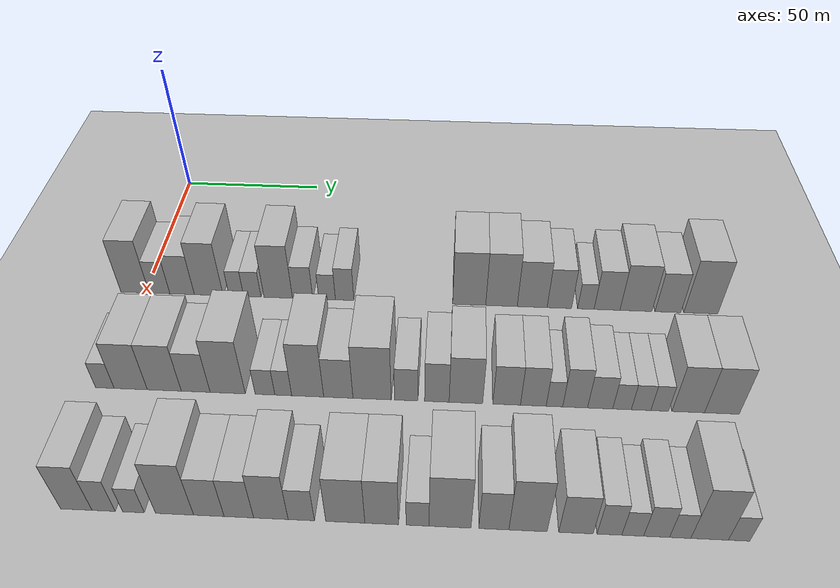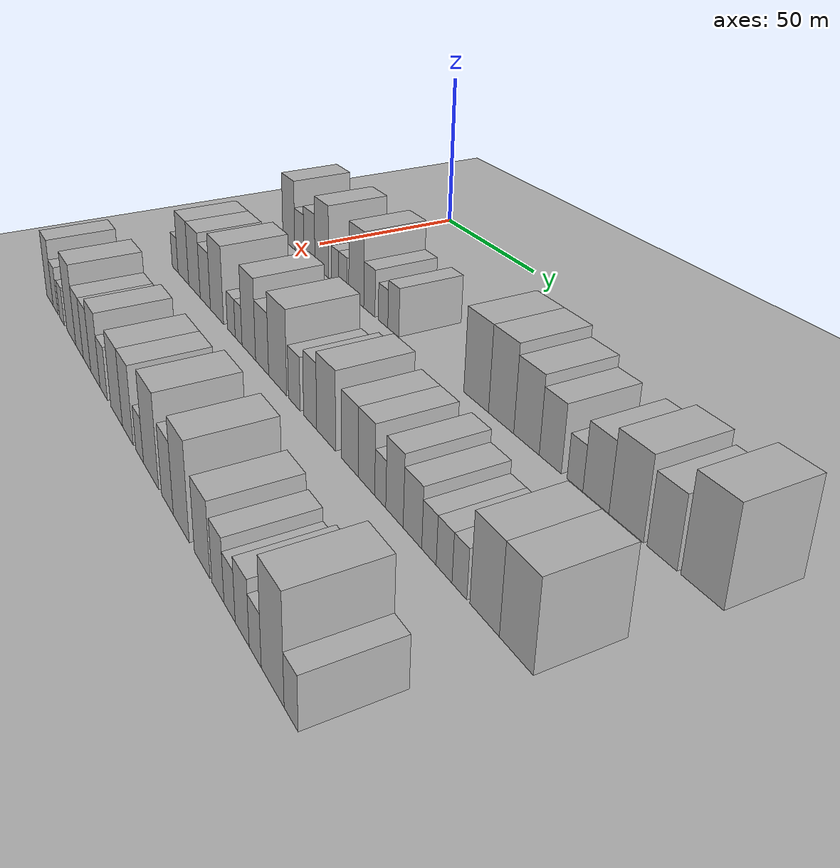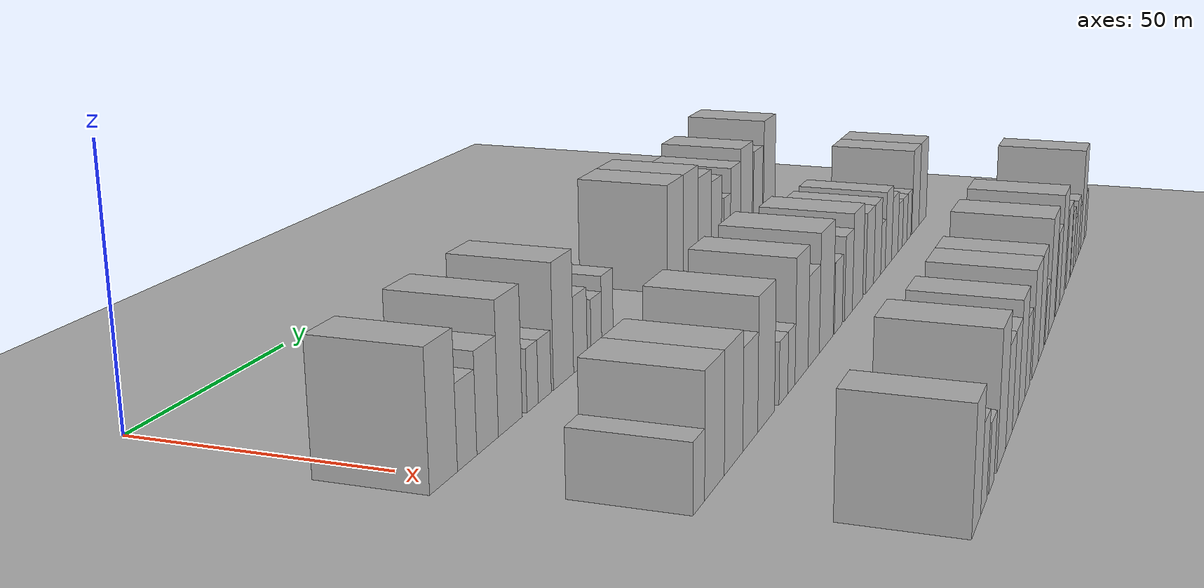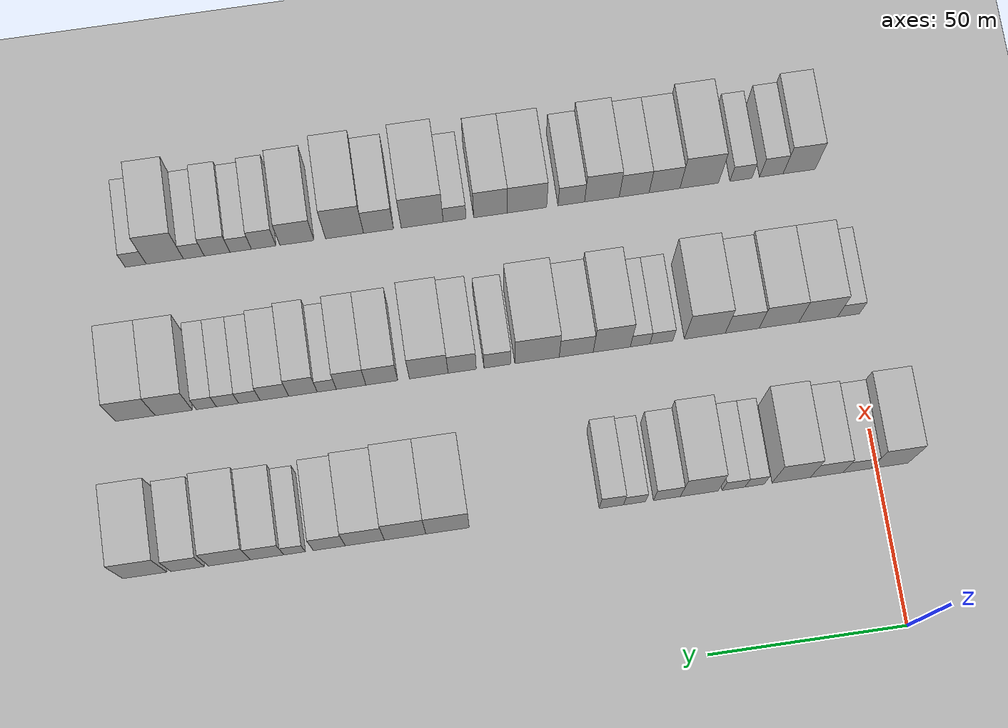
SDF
<sdf version="1.6">
 <world name="default">
  <include><name>ground_plane_1</name><uri>model://HANNAS_ground_plane</uri></include>
  <include>
   <name>ground_plane_2</name>
   <uri>model://HANNAS_ground_plane</uri>
   <pose>100 0 0  0 0 0</pose>
  </include>
  <model name="building_43">
   <static>1</static>
   <pose>50.0000 -3.1910 0 0.000000 0.000000 0.000000</pose>
   <link name="link">
    <pose>0 0 12.00 0 0 0</pose>
    <collision name="collision"><geometry><box><size>20.0000 9.6660 24.0000</size></box></geometry></collision>
    <visual name="visual">
     <cast_shadows>0</cast_shadows>
     <geometry><box><size>20.0000 9.6660 24.0000</size></box></geometry>
     <material>
      <script>
       <uri>model://HANNAS_wall/materials/scripts</uri>
       <uri>model://HANNAS_wall/materials/textures</uri>
       <name>vrc/HANNAS_wall</name>
      </script>
     </material>
    </visual>
   </link>
  </model>
  <model name="building_44">
   <static>1</static>
   <pose>50.0000 5.1931 0 0.000000 0.000000 0.000000</pose>
   <link name="link">
    <pose>0 0 7.50 0 0 0</pose>
    <collision name="collision"><geometry><box><size>20.0000 7.1022 15.0000</size></box></geometry></collision>
    <visual name="visual">
     <cast_shadows>0</cast_shadows>
     <geometry><box><size>20.0000 7.1022 15.0000</size></box></geometry>
     <material>
      <script>
       <uri>model://HANNAS_wall/materials/scripts</uri>
       <uri>model://HANNAS_wall/materials/textures</uri>
       <name>vrc/HANNAS_wall</name>
      </script>
     </material>
    </visual>
   </link>
  </model>
  <model name="building_45">
   <static>1</static>
   <pose>50.0000 12.9163 0 0.000000 0.000000 0.000000</pose>
   <link name="link">
    <pose>0 0 9.00 0 0 0</pose>
    <collision name="collision"><geometry><box><size>20.0000 8.3441 18.0000</size></box></geometry></collision>
    <visual name="visual">
     <cast_shadows>0</cast_shadows>
     <geometry><box><size>20.0000 8.3441 18.0000</size></box></geometry>
     <material>
      <script>
       <uri>model://HANNAS_wall/materials/scripts</uri>
       <uri>model://HANNAS_wall/materials/textures</uri>
       <name>vrc/HANNAS_wall</name>
      </script>
     </material>
    </visual>
   </link>
  </model>
  <model name="building_46">
   <static>1</static>
   <pose>50.0000 21.9917 0 0.000000 0.000000 0.000000</pose>
   <link name="link">
    <pose>0 0 12.00 0 0 0</pose>
    <collision name="collision"><geometry><box><size>20.0000 9.8067 24.0000</size></box></geometry></collision>
    <visual name="visual">
     <cast_shadows>0</cast_shadows>
     <geometry><box><size>20.0000 9.8067 24.0000</size></box></geometry>
     <material>
      <script>
       <uri>model://HANNAS_wall/materials/scripts</uri>
       <uri>model://HANNAS_wall/materials/textures</uri>
       <name>vrc/HANNAS_wall</name>
      </script>
     </material>
    </visual>
   </link>
  </model>
  <model name="building_47">
   <static>1</static>
   <pose>50.0000 31.3637 0 0.000000 0.000000 0.000000</pose>
   <link name="link">
    <pose>0 0 6.00 0 0 0</pose>
    <collision name="collision"><geometry><box><size>20.0000 4.9374 12.0000</size></box></geometry></collision>
    <visual name="visual">
     <cast_shadows>0</cast_shadows>
     <geometry><box><size>20.0000 4.9374 12.0000</size></box></geometry>
     <material>
      <script>
       <uri>model://HANNAS_wall/materials/scripts</uri>
       <uri>model://HANNAS_wall/materials/textures</uri>
       <name>vrc/HANNAS_wall</name>
      </script>
     </material>
    </visual>
   </link>
  </model>
  <model name="building_48">
   <static>1</static>
   <pose>50.0000 36.7672 0 0.000000 0.000000 0.000000</pose>
   <link name="link">
    <pose>0 0 6.00 0 0 0</pose>
    <collision name="collision"><geometry><box><size>20.0000 5.8695 12.0000</size></box></geometry></collision>
    <visual name="visual">
     <cast_shadows>0</cast_shadows>
     <geometry><box><size>20.0000 5.8695 12.0000</size></box></geometry>
     <material>
      <script>
       <uri>model://HANNAS_wall/materials/scripts</uri>
       <uri>model://HANNAS_wall/materials/textures</uri>
       <name>vrc/HANNAS_wall</name>
      </script>
     </material>
    </visual>
   </link>
  </model>
  <model name="building_49">
   <static>1</static>
   <pose>50.0000 45.5210 0 0.000000 0.000000 0.000000</pose>
   <link name="link">
    <pose>0 0 12.00 0 0 0</pose>
    <collision name="collision"><geometry><box><size>20.0000 9.6381 24.0000</size></box></geometry></collision>
    <visual name="visual">
     <cast_shadows>0</cast_shadows>
     <geometry><box><size>20.0000 9.6381 24.0000</size></box></geometry>
     <material>
      <script>
       <uri>model://HANNAS_wall/materials/scripts</uri>
       <uri>model://HANNAS_wall/materials/textures</uri>
       <name>vrc/HANNAS_wall</name>
      </script>
     </material>
    </visual>
   </link>
  </model>
  <model name="building_50">
   <static>1</static>
   <pose>50.0000 53.7683 0 0.000000 0.000000 0.000000</pose>
   <link name="link">
    <pose>0 0 7.50 0 0 0</pose>
    <collision name="collision"><geometry><box><size>20.0000 6.8565 15.0000</size></box></geometry></collision>
    <visual name="visual">
     <cast_shadows>0</cast_shadows>
     <geometry><box><size>20.0000 6.8565 15.0000</size></box></geometry>
     <material>
      <script>
       <uri>model://HANNAS_wall/materials/scripts</uri>
       <uri>model://HANNAS_wall/materials/textures</uri>
       <name>vrc/HANNAS_wall</name>
      </script>
     </material>
    </visual>
   </link>
  </model>
  <model name="building_51">
   <static>1</static>
   <pose>50.0000 61.9982 0 0.000000 0.000000 0.000000</pose>
   <link name="link">
    <pose>0 0 6.00 0 0 0</pose>
    <collision name="collision"><geometry><box><size>20.0000 5.6034 12.0000</size></box></geometry></collision>
    <visual name="visual">
     <cast_shadows>0</cast_shadows>
     <geometry><box><size>20.0000 5.6034 12.0000</size></box></geometry>
     <material>
      <script>
       <uri>model://HANNAS_wall/materials/scripts</uri>
       <uri>model://HANNAS_wall/materials/textures</uri>
       <name>vrc/HANNAS_wall</name>
      </script>
     </material>
    </visual>
   </link>
  </model>
  <model name="building_52">
   <static>1</static>
   <pose>50.0000 67.8972 0 0.000000 0.000000 0.000000</pose>
   <link name="link">
    <pose>0 0 7.50 0 0 0</pose>
    <collision name="collision"><geometry><box><size>20.0000 6.1945 15.0000</size></box></geometry></collision>
    <visual name="visual">
     <cast_shadows>0</cast_shadows>
     <geometry><box><size>20.0000 6.1945 15.0000</size></box></geometry>
     <material>
      <script>
       <uri>model://HANNAS_wall/materials/scripts</uri>
       <uri>model://HANNAS_wall/materials/textures</uri>
       <name>vrc/HANNAS_wall</name>
      </script>
     </material>
    </visual>
   </link>
  </model>
  <model name="building_53">
   <static>1</static>
   <pose>50.0000 109.4532 0 0.000000 0.000000 0.000000</pose>
   <link name="link">
    <pose>0 0 12.00 0 0 0</pose>
    <collision name="collision"><geometry><box><size>20.0000 10.9725 24.0000</size></box></geometry></collision>
    <visual name="visual">
     <cast_shadows>0</cast_shadows>
     <geometry><box><size>20.0000 10.9725 24.0000</size></box></geometry>
     <material>
      <script>
       <uri>model://HANNAS_wall/materials/scripts</uri>
       <uri>model://HANNAS_wall/materials/textures</uri>
       <name>vrc/HANNAS_wall</name>
      </script>
     </material>
    </visual>
   </link>
  </model>
  <model name="building_54">
   <static>1</static>
   <pose>50.0000 120.1569 0 0.000000 0.000000 0.000000</pose>
   <link name="link">
    <pose>0 0 12.00 0 0 0</pose>
    <collision name="collision"><geometry><box><size>20.0000 10.4349 24.0000</size></box></geometry></collision>
    <visual name="visual">
     <cast_shadows>0</cast_shadows>
     <geometry><box><size>20.0000 10.4349 24.0000</size></box></geometry>
     <material>
      <script>
       <uri>model://HANNAS_wall/materials/scripts</uri>
       <uri>model://HANNAS_wall/materials/textures</uri>
       <name>vrc/HANNAS_wall</name>
      </script>
     </material>
    </visual>
   </link>
  </model>
  <model name="building_55">
   <static>1</static>
   <pose>50.0000 130.3125 0 0.000000 0.000000 0.000000</pose>
   <link name="link">
    <pose>0 0 10.50 0 0 0</pose>
    <collision name="collision"><geometry><box><size>20.0000 9.8762 21.0000</size></box></geometry></collision>
    <visual name="visual">
     <cast_shadows>0</cast_shadows>
     <geometry><box><size>20.0000 9.8762 21.0000</size></box></geometry>
     <material>
      <script>
       <uri>model://HANNAS_wall/materials/scripts</uri>
       <uri>model://HANNAS_wall/materials/textures</uri>
       <name>vrc/HANNAS_wall</name>
      </script>
     </material>
    </visual>
   </link>
  </model>
  <model name="building_56">
   <static>1</static>
   <pose>50.0000 139.2779 0 0.000000 0.000000 0.000000</pose>
   <link name="link">
    <pose>0 0 9.00 0 0 0</pose>
    <collision name="collision"><geometry><box><size>20.0000 8.0546 18.0000</size></box></geometry></collision>
    <visual name="visual">
     <cast_shadows>0</cast_shadows>
     <geometry><box><size>20.0000 8.0546 18.0000</size></box></geometry>
     <material>
      <script>
       <uri>model://HANNAS_wall/materials/scripts</uri>
       <uri>model://HANNAS_wall/materials/textures</uri>
       <name>vrc/HANNAS_wall</name>
      </script>
     </material>
    </visual>
   </link>
  </model>
  <model name="building_57">
   <static>1</static>
   <pose>50.0000 148.0063 0 0.000000 0.000000 0.000000</pose>
   <link name="link">
    <pose>0 0 6.00 0 0 0</pose>
    <collision name="collision"><geometry><box><size>20.0000 5.4024 12.0000</size></box></geometry></collision>
    <visual name="visual">
     <cast_shadows>0</cast_shadows>
     <geometry><box><size>20.0000 5.4024 12.0000</size></box></geometry>
     <material>
      <script>
       <uri>model://HANNAS_wall/materials/scripts</uri>
       <uri>model://HANNAS_wall/materials/textures</uri>
       <name>vrc/HANNAS_wall</name>
      </script>
     </material>
    </visual>
   </link>
  </model>
  <model name="building_58">
   <static>1</static>
   <pose>50.0000 154.9467 0 0.000000 0.000000 0.000000</pose>
   <link name="link">
    <pose>0 0 9.00 0 0 0</pose>
    <collision name="collision"><geometry><box><size>20.0000 8.4783 18.0000</size></box></geometry></collision>
    <visual name="visual">
     <cast_shadows>0</cast_shadows>
     <geometry><box><size>20.0000 8.4783 18.0000</size></box></geometry>
     <material>
      <script>
       <uri>model://HANNAS_wall/materials/scripts</uri>
       <uri>model://HANNAS_wall/materials/textures</uri>
       <name>vrc/HANNAS_wall</name>
      </script>
     </material>
    </visual>
   </link>
  </model>
  <model name="building_59">
   <static>1</static>
   <pose>50.0000 164.4243 0 0.000000 0.000000 0.000000</pose>
   <link name="link">
    <pose>0 0 10.50 0 0 0</pose>
    <collision name="collision"><geometry><box><size>20.0000 10.4770 21.0000</size></box></geometry></collision>
    <visual name="visual">
     <cast_shadows>0</cast_shadows>
     <geometry><box><size>20.0000 10.4770 21.0000</size></box></geometry>
     <material>
      <script>
       <uri>model://HANNAS_wall/materials/scripts</uri>
       <uri>model://HANNAS_wall/materials/textures</uri>
       <name>vrc/HANNAS_wall</name>
      </script>
     </material>
    </visual>
   </link>
  </model>
  <model name="building_60">
   <static>1</static>
   <pose>50.0000 174.8707 0 0.000000 0.000000 0.000000</pose>
   <link name="link">
    <pose>0 0 9.00 0 0 0</pose>
    <collision name="collision"><geometry><box><size>20.0000 8.4156 18.0000</size></box></geometry></collision>
    <visual name="visual">
     <cast_shadows>0</cast_shadows>
     <geometry><box><size>20.0000 8.4156 18.0000</size></box></geometry>
     <material>
      <script>
       <uri>model://HANNAS_wall/materials/scripts</uri>
       <uri>model://HANNAS_wall/materials/textures</uri>
       <name>vrc/HANNAS_wall</name>
      </script>
     </material>
    </visual>
   </link>
  </model>
  <model name="building_61">
   <static>1</static>
   <pose>50.0000 185.6083 0 0.000000 0.000000 0.000000</pose>
   <link name="link">
    <pose>0 0 12.00 0 0 0</pose>
    <collision name="collision"><geometry><box><size>20.0000 11.0596 24.0000</size></box></geometry></collision>
    <visual name="visual">
     <cast_shadows>0</cast_shadows>
     <geometry><box><size>20.0000 11.0596 24.0000</size></box></geometry>
     <material>
      <script>
       <uri>model://HANNAS_wall/materials/scripts</uri>
       <uri>model://HANNAS_wall/materials/textures</uri>
       <name>vrc/HANNAS_wall</name>
      </script>
     </material>
    </visual>
   </link>
  </model>
  <model name="building_127">
   <static>1</static>
   <pose>90.0000 -0.2088 0 0.000000 0.000000 0.000000</pose>
   <link name="link">
    <pose>0 0 6.00 0 0 0</pose>
    <collision name="collision"><geometry><box><size>20.0000 5.7023 12.0000</size></box></geometry></collision>
    <visual name="visual">
     <cast_shadows>0</cast_shadows>
     <geometry><box><size>20.0000 5.7023 12.0000</size></box></geometry>
     <material>
      <script>
       <uri>model://HANNAS_wall/materials/scripts</uri>
       <uri>model://HANNAS_wall/materials/textures</uri>
       <name>vrc/HANNAS_wall</name>
      </script>
     </material>
    </visual>
   </link>
  </model>
  <model name="building_128">
   <static>1</static>
   <pose>90.0000 7.7156 0 0.000000 0.000000 0.000000</pose>
   <link name="link">
    <pose>0 0 10.50 0 0 0</pose>
    <collision name="collision"><geometry><box><size>20.0000 10.1465 21.0000</size></box></geometry></collision>
    <visual name="visual">
     <cast_shadows>0</cast_shadows>
     <geometry><box><size>20.0000 10.1465 21.0000</size></box></geometry>
     <material>
      <script>
       <uri>model://HANNAS_wall/materials/scripts</uri>
       <uri>model://HANNAS_wall/materials/textures</uri>
       <name>vrc/HANNAS_wall</name>
      </script>
     </material>
    </visual>
   </link>
  </model>
  <model name="building_129">
   <static>1</static>
   <pose>90.0000 17.9669 0 0.000000 0.000000 0.000000</pose>
   <link name="link">
    <pose>0 0 10.50 0 0 0</pose>
    <collision name="collision"><geometry><box><size>20.0000 10.3562 21.0000</size></box></geometry></collision>
    <visual name="visual">
     <cast_shadows>0</cast_shadows>
     <geometry><box><size>20.0000 10.3562 21.0000</size></box></geometry>
     <material>
      <script>
       <uri>model://HANNAS_wall/materials/scripts</uri>
       <uri>model://HANNAS_wall/materials/textures</uri>
       <name>vrc/HANNAS_wall</name>
      </script>
     </material>
    </visual>
   </link>
  </model>
  <model name="building_130">
   <static>1</static>
   <pose>90.0000 27.5365 0 0.000000 0.000000 0.000000</pose>
   <link name="link">
    <pose>0 0 9.00 0 0 0</pose>
    <collision name="collision"><geometry><box><size>20.0000 8.7829 18.0000</size></box></geometry></collision>
    <visual name="visual">
     <cast_shadows>0</cast_shadows>
     <geometry><box><size>20.0000 8.7829 18.0000</size></box></geometry>
     <material>
      <script>
       <uri>model://HANNAS_wall/materials/scripts</uri>
       <uri>model://HANNAS_wall/materials/textures</uri>
       <name>vrc/HANNAS_wall</name>
      </script>
     </material>
    </visual>
   </link>
  </model>
  <model name="building_131">
   <static>1</static>
   <pose>90.0000 37.2476 0 0.000000 0.000000 0.000000</pose>
   <link name="link">
    <pose>0 0 12.00 0 0 0</pose>
    <collision name="collision"><geometry><box><size>20.0000 10.6394 24.0000</size></box></geometry></collision>
    <visual name="visual">
     <cast_shadows>0</cast_shadows>
     <geometry><box><size>20.0000 10.6394 24.0000</size></box></geometry>
     <material>
      <script>
       <uri>model://HANNAS_wall/materials/scripts</uri>
       <uri>model://HANNAS_wall/materials/textures</uri>
       <name>vrc/HANNAS_wall</name>
      </script>
     </material>
    </visual>
   </link>
  </model>
  <model name="building_132">
   <static>1</static>
   <pose>90.0000 48.5385 0 0.000000 0.000000 0.000000</pose>
   <link name="link">
    <pose>0 0 6.00 0 0 0</pose>
    <collision name="collision"><geometry><box><size>20.0000 5.9423 12.0000</size></box></geometry></collision>
    <visual name="visual">
     <cast_shadows>0</cast_shadows>
     <geometry><box><size>20.0000 5.9423 12.0000</size></box></geometry>
     <material>
      <script>
       <uri>model://HANNAS_wall/materials/scripts</uri>
       <uri>model://HANNAS_wall/materials/textures</uri>
       <name>vrc/HANNAS_wall</name>
      </script>
     </material>
    </visual>
   </link>
  </model>
  <model name="building_133">
   <static>1</static>
   <pose>90.0000 54.0481 0 0.000000 0.000000 0.000000</pose>
   <link name="link">
    <pose>0 0 6.00 0 0 0</pose>
    <collision name="collision"><geometry><box><size>20.0000 5.0769 12.0000</size></box></geometry></collision>
    <visual name="visual">
     <cast_shadows>0</cast_shadows>
     <geometry><box><size>20.0000 5.0769 12.0000</size></box></geometry>
     <material>
      <script>
       <uri>model://HANNAS_wall/materials/scripts</uri>
       <uri>model://HANNAS_wall/materials/textures</uri>
       <name>vrc/HANNAS_wall</name>
      </script>
     </material>
    </visual>
   </link>
  </model>
  <model name="building_134">
   <static>1</static>
   <pose>90.0000 61.3993 0 0.000000 0.000000 0.000000</pose>
   <link name="link">
    <pose>0 0 12.00 0 0 0</pose>
    <collision name="collision"><geometry><box><size>20.0000 9.6254 24.0000</size></box></geometry></collision>
    <visual name="visual">
     <cast_shadows>0</cast_shadows>
     <geometry><box><size>20.0000 9.6254 24.0000</size></box></geometry>
     <material>
      <script>
       <uri>model://HANNAS_wall/materials/scripts</uri>
       <uri>model://HANNAS_wall/materials/textures</uri>
       <name>vrc/HANNAS_wall</name>
      </script>
     </material>
    </visual>
   </link>
  </model>
  <model name="building_135">
   <static>1</static>
   <pose>90.0000 70.6013 0 0.000000 0.000000 0.000000</pose>
   <link name="link">
    <pose>0 0 9.00 0 0 0</pose>
    <collision name="collision"><geometry><box><size>20.0000 8.7785 18.0000</size></box></geometry></collision>
    <visual name="visual">
     <cast_shadows>0</cast_shadows>
     <geometry><box><size>20.0000 8.7785 18.0000</size></box></geometry>
     <material>
      <script>
       <uri>model://HANNAS_wall/materials/scripts</uri>
       <uri>model://HANNAS_wall/materials/textures</uri>
       <name>vrc/HANNAS_wall</name>
      </script>
     </material>
    </visual>
   </link>
  </model>
  <model name="building_136">
   <static>1</static>
   <pose>90.0000 80.7221 0 0.000000 0.000000 0.000000</pose>
   <link name="link">
    <pose>0 0 12.00 0 0 0</pose>
    <collision name="collision"><geometry><box><size>20.0000 11.4631 24.0000</size></box></geometry></collision>
    <visual name="visual">
     <cast_shadows>0</cast_shadows>
     <geometry><box><size>20.0000 11.4631 24.0000</size></box></geometry>
     <material>
      <script>
       <uri>model://HANNAS_wall/materials/scripts</uri>
       <uri>model://HANNAS_wall/materials/textures</uri>
       <name>vrc/HANNAS_wall</name>
      </script>
     </material>
    </visual>
   </link>
  </model>
  <model name="building_137">
   <static>1</static>
   <pose>90.0000 90.9222 0 0.000000 0.000000 0.000000</pose>
   <link name="link">
    <pose>0 0 7.50 0 0 0</pose>
    <collision name="collision"><geometry><box><size>20.0000 6.9370 15.0000</size></box></geometry></collision>
    <visual name="visual">
     <cast_shadows>0</cast_shadows>
     <geometry><box><size>20.0000 6.9370 15.0000</size></box></geometry>
     <material>
      <script>
       <uri>model://HANNAS_wall/materials/scripts</uri>
       <uri>model://HANNAS_wall/materials/textures</uri>
       <name>vrc/HANNAS_wall</name>
      </script>
     </material>
    </visual>
   </link>
  </model>
  <model name="building_138">
   <static>1</static>
   <pose>90.0000 100.0258 0 0.000000 0.000000 0.000000</pose>
   <link name="link">
    <pose>0 0 9.00 0 0 0</pose>
    <collision name="collision"><geometry><box><size>20.0000 7.2702 18.0000</size></box></geometry></collision>
    <visual name="visual">
     <cast_shadows>0</cast_shadows>
     <geometry><box><size>20.0000 7.2702 18.0000</size></box></geometry>
     <material>
      <script>
       <uri>model://HANNAS_wall/materials/scripts</uri>
       <uri>model://HANNAS_wall/materials/textures</uri>
       <name>vrc/HANNAS_wall</name>
      </script>
     </material>
    </visual>
   </link>
  </model>
  <model name="building_139">
   <static>1</static>
   <pose>90.0000 108.6352 0 0.000000 0.000000 0.000000</pose>
   <link name="link">
    <pose>0 0 10.50 0 0 0</pose>
    <collision name="collision"><geometry><box><size>20.0000 9.9487 21.0000</size></box></geometry></collision>
    <visual name="visual">
     <cast_shadows>0</cast_shadows>
     <geometry><box><size>20.0000 9.9487 21.0000</size></box></geometry>
     <material>
      <script>
       <uri>model://HANNAS_wall/materials/scripts</uri>
       <uri>model://HANNAS_wall/materials/textures</uri>
       <name>vrc/HANNAS_wall</name>
      </script>
     </material>
    </visual>
   </link>
  </model>
  <model name="building_140">
   <static>1</static>
   <pose>90.0000 120.7035 0 0.000000 0.000000 0.000000</pose>
   <link name="link">
    <pose>0 0 9.00 0 0 0</pose>
    <collision name="collision"><geometry><box><size>20.0000 8.1879 18.0000</size></box></geometry></collision>
    <visual name="visual">
     <cast_shadows>0</cast_shadows>
     <geometry><box><size>20.0000 8.1879 18.0000</size></box></geometry>
     <material>
      <script>
       <uri>model://HANNAS_wall/materials/scripts</uri>
       <uri>model://HANNAS_wall/materials/textures</uri>
       <name>vrc/HANNAS_wall</name>
      </script>
     </material>
    </visual>
   </link>
  </model>
  <model name="building_141">
   <static>1</static>
   <pose>90.0000 128.5913 0 0.000000 0.000000 0.000000</pose>
   <link name="link">
    <pose>0 0 9.00 0 0 0</pose>
    <collision name="collision"><geometry><box><size>20.0000 7.5877 18.0000</size></box></geometry></collision>
    <visual name="visual">
     <cast_shadows>0</cast_shadows>
     <geometry><box><size>20.0000 7.5877 18.0000</size></box></geometry>
     <material>
      <script>
       <uri>model://HANNAS_wall/materials/scripts</uri>
       <uri>model://HANNAS_wall/materials/textures</uri>
       <name>vrc/HANNAS_wall</name>
      </script>
     </material>
    </visual>
   </link>
  </model>
  <model name="building_142">
   <static>1</static>
   <pose>90.0000 134.8174 0 0.000000 0.000000 0.000000</pose>
   <link name="link">
    <pose>0 0 6.00 0 0 0</pose>
    <collision name="collision"><geometry><box><size>20.0000 4.8645 12.0000</size></box></geometry></collision>
    <visual name="visual">
     <cast_shadows>0</cast_shadows>
     <geometry><box><size>20.0000 4.8645 12.0000</size></box></geometry>
     <material>
      <script>
       <uri>model://HANNAS_wall/materials/scripts</uri>
       <uri>model://HANNAS_wall/materials/textures</uri>
       <name>vrc/HANNAS_wall</name>
      </script>
     </material>
    </visual>
   </link>
  </model>
  <model name="building_143">
   <static>1</static>
   <pose>90.0000 140.9001 0 0.000000 0.000000 0.000000</pose>
   <link name="link">
    <pose>0 0 9.00 0 0 0</pose>
    <collision name="collision"><geometry><box><size>20.0000 7.3009 18.0000</size></box></geometry></collision>
    <visual name="visual">
     <cast_shadows>0</cast_shadows>
     <geometry><box><size>20.0000 7.3009 18.0000</size></box></geometry>
     <material>
      <script>
       <uri>model://HANNAS_wall/materials/scripts</uri>
       <uri>model://HANNAS_wall/materials/textures</uri>
       <name>vrc/HANNAS_wall</name>
      </script>
     </material>
    </visual>
   </link>
  </model>
  <model name="building_144">
   <static>1</static>
   <pose>90.0000 148.2397 0 0.000000 0.000000 0.000000</pose>
   <link name="link">
    <pose>0 0 7.50 0 0 0</pose>
    <collision name="collision"><geometry><box><size>20.0000 7.3783 15.0000</size></box></geometry></collision>
    <visual name="visual">
     <cast_shadows>0</cast_shadows>
     <geometry><box><size>20.0000 7.3783 15.0000</size></box></geometry>
     <material>
      <script>
       <uri>model://HANNAS_wall/materials/scripts</uri>
       <uri>model://HANNAS_wall/materials/textures</uri>
       <name>vrc/HANNAS_wall</name>
      </script>
     </material>
    </visual>
   </link>
  </model>
  <model name="building_145">
   <static>1</static>
   <pose>90.0000 154.6604 0 0.000000 0.000000 0.000000</pose>
   <link name="link">
    <pose>0 0 6.00 0 0 0</pose>
    <collision name="collision"><geometry><box><size>20.0000 5.4632 12.0000</size></box></geometry></collision>
    <visual name="visual">
     <cast_shadows>0</cast_shadows>
     <geometry><box><size>20.0000 5.4632 12.0000</size></box></geometry>
     <material>
      <script>
       <uri>model://HANNAS_wall/materials/scripts</uri>
       <uri>model://HANNAS_wall/materials/textures</uri>
       <name>vrc/HANNAS_wall</name>
      </script>
     </material>
    </visual>
   </link>
  </model>
  <model name="building_146">
   <static>1</static>
   <pose>90.0000 160.2435 0 0.000000 0.000000 0.000000</pose>
   <link name="link">
    <pose>0 0 6.00 0 0 0</pose>
    <collision name="collision"><geometry><box><size>20.0000 5.7029 12.0000</size></box></geometry></collision>
    <visual name="visual">
     <cast_shadows>0</cast_shadows>
     <geometry><box><size>20.0000 5.7029 12.0000</size></box></geometry>
     <material>
      <script>
       <uri>model://HANNAS_wall/materials/scripts</uri>
       <uri>model://HANNAS_wall/materials/textures</uri>
       <name>vrc/HANNAS_wall</name>
      </script>
     </material>
    </visual>
   </link>
  </model>
  <model name="building_147">
   <static>1</static>
   <pose>90.0000 165.6579 0 0.000000 0.000000 0.000000</pose>
   <link name="link">
    <pose>0 0 6.00 0 0 0</pose>
    <collision name="collision"><geometry><box><size>20.0000 5.1260 12.0000</size></box></geometry></collision>
    <visual name="visual">
     <cast_shadows>0</cast_shadows>
     <geometry><box><size>20.0000 5.1260 12.0000</size></box></geometry>
     <material>
      <script>
       <uri>model://HANNAS_wall/materials/scripts</uri>
       <uri>model://HANNAS_wall/materials/textures</uri>
       <name>vrc/HANNAS_wall</name>
      </script>
     </material>
    </visual>
   </link>
  </model>
  <model name="building_148">
   <static>1</static>
   <pose>90.0000 173.9719 0 0.000000 0.000000 0.000000</pose>
   <link name="link">
    <pose>0 0 10.50 0 0 0</pose>
    <collision name="collision"><geometry><box><size>20.0000 9.5020 21.0000</size></box></geometry></collision>
    <visual name="visual">
     <cast_shadows>0</cast_shadows>
     <geometry><box><size>20.0000 9.5020 21.0000</size></box></geometry>
     <material>
      <script>
       <uri>model://HANNAS_wall/materials/scripts</uri>
       <uri>model://HANNAS_wall/materials/textures</uri>
       <name>vrc/HANNAS_wall</name>
      </script>
     </material>
    </visual>
   </link>
  </model>
  <model name="building_149">
   <static>1</static>
   <pose>90.0000 183.7582 0 0.000000 0.000000 0.000000</pose>
   <link name="link">
    <pose>0 0 10.50 0 0 0</pose>
    <collision name="collision"><geometry><box><size>20.0000 10.0707 21.0000</size></box></geometry></collision>
    <visual name="visual">
     <cast_shadows>0</cast_shadows>
     <geometry><box><size>20.0000 10.0707 21.0000</size></box></geometry>
     <material>
      <script>
       <uri>model://HANNAS_wall/materials/scripts</uri>
       <uri>model://HANNAS_wall/materials/textures</uri>
       <name>vrc/HANNAS_wall</name>
      </script>
     </material>
    </visual>
   </link>
  </model>
  <model name="building_211">
   <static>1</static>
   <pose>130.0000 5.3848 0 0.000000 0.000000 0.000000</pose>
   <link name="link">
    <pose>0 0 10.50 0 0 0</pose>
    <collision name="collision"><geometry><box><size>20.0000 8.4962 21.0000</size></box></geometry></collision>
    <visual name="visual">
     <cast_shadows>0</cast_shadows>
     <geometry><box><size>20.0000 8.4962 21.0000</size></box></geometry>
     <material>
      <script>
       <uri>model://HANNAS_wall/materials/scripts</uri>
       <uri>model://HANNAS_wall/materials/textures</uri>
       <name>vrc/HANNAS_wall</name>
      </script>
     </material>
    </visual>
   </link>
  </model>
  <model name="building_212">
   <static>1</static>
   <pose>130.0000 12.7706 0 0.000000 0.000000 0.000000</pose>
   <link name="link">
    <pose>0 0 7.50 0 0 0</pose>
    <collision name="collision"><geometry><box><size>20.0000 6.2754 15.0000</size></box></geometry></collision>
    <visual name="visual">
     <cast_shadows>0</cast_shadows>
     <geometry><box><size>20.0000 6.2754 15.0000</size></box></geometry>
     <material>
      <script>
       <uri>model://HANNAS_wall/materials/scripts</uri>
       <uri>model://HANNAS_wall/materials/textures</uri>
       <name>vrc/HANNAS_wall</name>
      </script>
     </material>
    </visual>
   </link>
  </model>
  <model name="building_213">
   <static>1</static>
   <pose>130.0000 20.8236 0 0.000000 0.000000 0.000000</pose>
   <link name="link">
    <pose>0 0 6.00 0 0 0</pose>
    <collision name="collision"><geometry><box><size>20.0000 5.8306 12.0000</size></box></geometry></collision>
    <visual name="visual">
     <cast_shadows>0</cast_shadows>
     <geometry><box><size>20.0000 5.8306 12.0000</size></box></geometry>
     <material>
      <script>
       <uri>model://HANNAS_wall/materials/scripts</uri>
       <uri>model://HANNAS_wall/materials/textures</uri>
       <name>vrc/HANNAS_wall</name>
      </script>
     </material>
    </visual>
   </link>
  </model>
  <model name="building_214">
   <static>1</static>
   <pose>130.0000 31.8542 0 0.000000 0.000000 0.000000</pose>
   <link name="link">
    <pose>0 0 12.00 0 0 0</pose>
    <collision name="collision"><geometry><box><size>20.0000 10.2306 24.0000</size></box></geometry></collision>
    <visual name="visual">
     <cast_shadows>0</cast_shadows>
     <geometry><box><size>20.0000 10.2306 24.0000</size></box></geometry>
     <material>
      <script>
       <uri>model://HANNAS_wall/materials/scripts</uri>
       <uri>model://HANNAS_wall/materials/textures</uri>
       <name>vrc/HANNAS_wall</name>
      </script>
     </material>
    </visual>
   </link>
  </model>
  <model name="building_215">
   <static>1</static>
   <pose>130.0000 41.0463 0 0.000000 0.000000 0.000000</pose>
   <link name="link">
    <pose>0 0 9.00 0 0 0</pose>
    <collision name="collision"><geometry><box><size>20.0000 8.1536 18.0000</size></box></geometry></collision>
    <visual name="visual">
     <cast_shadows>0</cast_shadows>
     <geometry><box><size>20.0000 8.1536 18.0000</size></box></geometry>
     <material>
      <script>
       <uri>model://HANNAS_wall/materials/scripts</uri>
       <uri>model://HANNAS_wall/materials/textures</uri>
       <name>vrc/HANNAS_wall</name>
      </script>
     </material>
    </visual>
   </link>
  </model>
  <model name="building_216">
   <static>1</static>
   <pose>130.0000 49.0525 0 0.000000 0.000000 0.000000</pose>
   <link name="link">
    <pose>0 0 9.00 0 0 0</pose>
    <collision name="collision"><geometry><box><size>20.0000 7.8588 18.0000</size></box></geometry></collision>
    <visual name="visual">
     <cast_shadows>0</cast_shadows>
     <geometry><box><size>20.0000 7.8588 18.0000</size></box></geometry>
     <material>
      <script>
       <uri>model://HANNAS_wall/materials/scripts</uri>
       <uri>model://HANNAS_wall/materials/textures</uri>
       <name>vrc/HANNAS_wall</name>
      </script>
     </material>
    </visual>
   </link>
  </model>
  <model name="building_217">
   <static>1</static>
   <pose>130.0000 57.5645 0 0.000000 0.000000 0.000000</pose>
   <link name="link">
    <pose>0 0 10.50 0 0 0</pose>
    <collision name="collision"><geometry><box><size>20.0000 9.1652 21.0000</size></box></geometry></collision>
    <visual name="visual">
     <cast_shadows>0</cast_shadows>
     <geometry><box><size>20.0000 9.1652 21.0000</size></box></geometry>
     <material>
      <script>
       <uri>model://HANNAS_wall/materials/scripts</uri>
       <uri>model://HANNAS_wall/materials/textures</uri>
       <name>vrc/HANNAS_wall</name>
      </script>
     </material>
    </visual>
   </link>
  </model>
  <model name="building_218">
   <static>1</static>
   <pose>130.0000 65.6352 0 0.000000 0.000000 0.000000</pose>
   <link name="link">
    <pose>0 0 7.50 0 0 0</pose>
    <collision name="collision"><geometry><box><size>20.0000 6.9761 15.0000</size></box></geometry></collision>
    <visual name="visual">
     <cast_shadows>0</cast_shadows>
     <geometry><box><size>20.0000 6.9761 15.0000</size></box></geometry>
     <material>
      <script>
       <uri>model://HANNAS_wall/materials/scripts</uri>
       <uri>model://HANNAS_wall/materials/textures</uri>
       <name>vrc/HANNAS_wall</name>
      </script>
     </material>
    </visual>
   </link>
  </model>
  <model name="building_219">
   <static>1</static>
   <pose>130.0000 77.2814 0 0.000000 0.000000 0.000000</pose>
   <link name="link">
    <pose>0 0 10.50 0 0 0</pose>
    <collision name="collision"><geometry><box><size>20.0000 10.3164 21.0000</size></box></geometry></collision>
    <visual name="visual">
     <cast_shadows>0</cast_shadows>
     <geometry><box><size>20.0000 10.3164 21.0000</size></box></geometry>
     <material>
      <script>
       <uri>model://HANNAS_wall/materials/scripts</uri>
       <uri>model://HANNAS_wall/materials/textures</uri>
       <name>vrc/HANNAS_wall</name>
      </script>
     </material>
    </visual>
   </link>
  </model>
  <model name="building_220">
   <static>1</static>
   <pose>130.0000 86.8623 0 0.000000 0.000000 0.000000</pose>
   <link name="link">
    <pose>0 0 10.50 0 0 0</pose>
    <collision name="collision"><geometry><box><size>20.0000 8.8453 21.0000</size></box></geometry></collision>
    <visual name="visual">
     <cast_shadows>0</cast_shadows>
     <geometry><box><size>20.0000 8.8453 21.0000</size></box></geometry>
     <material>
      <script>
       <uri>model://HANNAS_wall/materials/scripts</uri>
       <uri>model://HANNAS_wall/materials/textures</uri>
       <name>vrc/HANNAS_wall</name>
      </script>
     </material>
    </visual>
   </link>
  </model>
  <model name="building_221">
   <static>1</static>
   <pose>130.0000 96.2770 0 0.000000 0.000000 0.000000</pose>
   <link name="link">
    <pose>0 0 6.00 0 0 0</pose>
    <collision name="collision"><geometry><box><size>20.0000 5.9843 12.0000</size></box></geometry></collision>
    <visual name="visual">
     <cast_shadows>0</cast_shadows>
     <geometry><box><size>20.0000 5.9843 12.0000</size></box></geometry>
     <material>
      <script>
       <uri>model://HANNAS_wall/materials/scripts</uri>
       <uri>model://HANNAS_wall/materials/textures</uri>
       <name>vrc/HANNAS_wall</name>
      </script>
     </material>
    </visual>
   </link>
  </model>
  <model name="building_222">
   <static>1</static>
   <pose>130.0000 104.7714 0 0.000000 0.000000 0.000000</pose>
   <link name="link">
    <pose>0 0 12.00 0 0 0</pose>
    <collision name="collision"><geometry><box><size>20.0000 11.0046 24.0000</size></box></geometry></collision>
    <visual name="visual">
     <cast_shadows>0</cast_shadows>
     <geometry><box><size>20.0000 11.0046 24.0000</size></box></geometry>
     <material>
      <script>
       <uri>model://HANNAS_wall/materials/scripts</uri>
       <uri>model://HANNAS_wall/materials/textures</uri>
       <name>vrc/HANNAS_wall</name>
      </script>
     </material>
    </visual>
   </link>
  </model>
  <model name="building_223">
   <static>1</static>
   <pose>130.0000 116.2031 0 0.000000 0.000000 0.000000</pose>
   <link name="link">
    <pose>0 0 9.00 0 0 0</pose>
    <collision name="collision"><geometry><box><size>20.0000 7.8589 18.0000</size></box></geometry></collision>
    <visual name="visual">
     <cast_shadows>0</cast_shadows>
     <geometry><box><size>20.0000 7.8589 18.0000</size></box></geometry>
     <material>
      <script>
       <uri>model://HANNAS_wall/materials/scripts</uri>
       <uri>model://HANNAS_wall/materials/textures</uri>
       <name>vrc/HANNAS_wall</name>
      </script>
     </material>
    </visual>
   </link>
  </model>
  <model name="building_224">
   <static>1</static>
   <pose>130.0000 125.1048 0 0.000000 0.000000 0.000000</pose>
   <link name="link">
    <pose>0 0 12.00 0 0 0</pose>
    <collision name="collision"><geometry><box><size>20.0000 9.9444 24.0000</size></box></geometry></collision>
    <visual name="visual">
     <cast_shadows>0</cast_shadows>
     <geometry><box><size>20.0000 9.9444 24.0000</size></box></geometry>
     <material>
      <script>
       <uri>model://HANNAS_wall/materials/scripts</uri>
       <uri>model://HANNAS_wall/materials/textures</uri>
       <name>vrc/HANNAS_wall</name>
      </script>
     </material>
    </visual>
   </link>
  </model>
  <model name="building_225">
   <static>1</static>
   <pose>130.0000 137.5329 0 0.000000 0.000000 0.000000</pose>
   <link name="link">
    <pose>0 0 9.00 0 0 0</pose>
    <collision name="collision"><geometry><box><size>20.0000 8.9117 18.0000</size></box></geometry></collision>
    <visual name="visual">
     <cast_shadows>0</cast_shadows>
     <geometry><box><size>20.0000 8.9117 18.0000</size></box></geometry>
     <material>
      <script>
       <uri>model://HANNAS_wall/materials/scripts</uri>
       <uri>model://HANNAS_wall/materials/textures</uri>
       <name>vrc/HANNAS_wall</name>
      </script>
     </material>
    </visual>
   </link>
  </model>
  <model name="building_226">
   <static>1</static>
   <pose>130.0000 146.1888 0 0.000000 0.000000 0.000000</pose>
   <link name="link">
    <pose>0 0 7.50 0 0 0</pose>
    <collision name="collision"><geometry><box><size>20.0000 6.4002 15.0000</size></box></geometry></collision>
    <visual name="visual">
     <cast_shadows>0</cast_shadows>
     <geometry><box><size>20.0000 6.4002 15.0000</size></box></geometry>
     <material>
      <script>
       <uri>model://HANNAS_wall/materials/scripts</uri>
       <uri>model://HANNAS_wall/materials/textures</uri>
       <name>vrc/HANNAS_wall</name>
      </script>
     </material>
    </visual>
   </link>
  </model>
  <model name="building_227">
   <static>1</static>
   <pose>130.0000 152.2000 0 0.000000 0.000000 0.000000</pose>
   <link name="link">
    <pose>0 0 6.00 0 0 0</pose>
    <collision name="collision"><geometry><box><size>20.0000 5.6223 12.0000</size></box></geometry></collision>
    <visual name="visual">
     <cast_shadows>0</cast_shadows>
     <geometry><box><size>20.0000 5.6223 12.0000</size></box></geometry>
     <material>
      <script>
       <uri>model://HANNAS_wall/materials/scripts</uri>
       <uri>model://HANNAS_wall/materials/textures</uri>
       <name>vrc/HANNAS_wall</name>
      </script>
     </material>
    </visual>
   </link>
  </model>
  <model name="building_228">
   <static>1</static>
   <pose>130.0000 158.3418 0 0.000000 0.000000 0.000000</pose>
   <link name="link">
    <pose>0 0 7.50 0 0 0</pose>
    <collision name="collision"><geometry><box><size>20.0000 6.6612 15.0000</size></box></geometry></collision>
    <visual name="visual">
     <cast_shadows>0</cast_shadows>
     <geometry><box><size>20.0000 6.6612 15.0000</size></box></geometry>
     <material>
      <script>
       <uri>model://HANNAS_wall/materials/scripts</uri>
       <uri>model://HANNAS_wall/materials/textures</uri>
       <name>vrc/HANNAS_wall</name>
      </script>
     </material>
    </visual>
   </link>
  </model>
  <model name="building_229">
   <static>1</static>
   <pose>130.0000 164.3922 0 0.000000 0.000000 0.000000</pose>
   <link name="link">
    <pose>0 0 6.00 0 0 0</pose>
    <collision name="collision"><geometry><box><size>20.0000 5.4396 12.0000</size></box></geometry></collision>
    <visual name="visual">
     <cast_shadows>0</cast_shadows>
     <geometry><box><size>20.0000 5.4396 12.0000</size></box></geometry>
     <material>
      <script>
       <uri>model://HANNAS_wall/materials/scripts</uri>
       <uri>model://HANNAS_wall/materials/textures</uri>
       <name>vrc/HANNAS_wall</name>
      </script>
     </material>
    </visual>
   </link>
  </model>
  <model name="building_230">
   <static>1</static>
   <pose>130.0000 171.9190 0 0.000000 0.000000 0.000000</pose>
   <link name="link">
    <pose>0 0 12.00 0 0 0</pose>
    <collision name="collision"><geometry><box><size>20.0000 9.6139 24.0000</size></box></geometry></collision>
    <visual name="visual">
     <cast_shadows>0</cast_shadows>
     <geometry><box><size>20.0000 9.6139 24.0000</size></box></geometry>
     <material>
      <script>
       <uri>model://HANNAS_wall/materials/scripts</uri>
       <uri>model://HANNAS_wall/materials/textures</uri>
       <name>vrc/HANNAS_wall</name>
      </script>
     </material>
    </visual>
   </link>
  </model>
  <model name="building_231">
   <static>1</static>
   <pose>130.0000 179.4590 0 0.000000 0.000000 0.000000</pose>
   <link name="link">
    <pose>0 0 6.00 0 0 0</pose>
    <collision name="collision"><geometry><box><size>20.0000 5.4663 12.0000</size></box></geometry></collision>
    <visual name="visual">
     <cast_shadows>0</cast_shadows>
     <geometry><box><size>20.0000 5.4663 12.0000</size></box></geometry>
     <material>
      <script>
       <uri>model://HANNAS_wall/materials/scripts</uri>
       <uri>model://HANNAS_wall/materials/textures</uri>
       <name>vrc/HANNAS_wall</name>
      </script>
     </material>
    </visual>
   </link>
  </model>
 </world>
</sdf>
